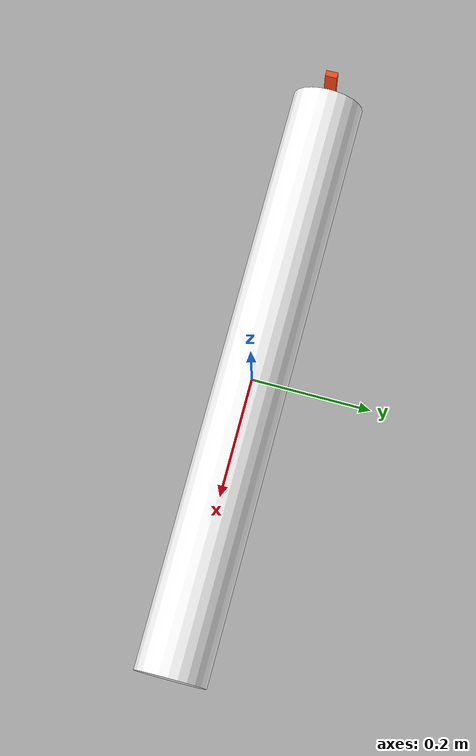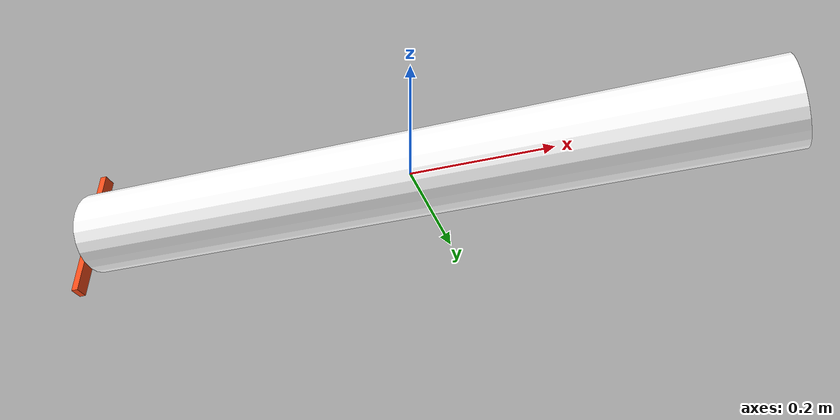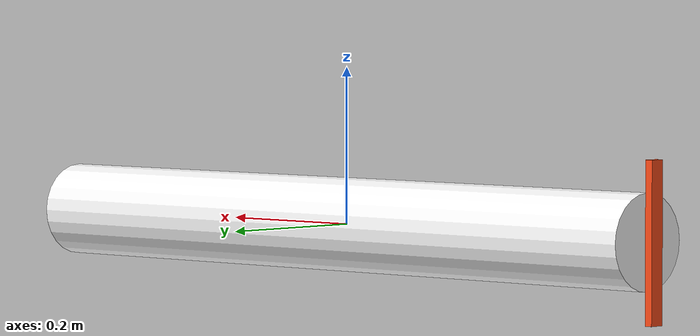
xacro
<?xml version="1.0"?>
<robot xmlns:xacro="http://www.ros.org/wiki/xacro">

    <material name="white">
        <color rgba="1 1 1 1" />
    </material>
    <material name="orange">
        <color rgba="1 0.3 0.1 1" />
    </material>
    <material name="blue">
        <color rgba="0.2 0.2 1 1" />
    </material>
    <material name="black">
        <color rgba="0 0 0 1" />
    </material>

    <!-- BASE LINK -->
    <link name="base_link"></link>

    <!-- CHASSIS LINK -->
    <joint name="chassis_joint" type="fixed">
        <parent link="base_link" />
        <child link="chassis" />
        <origin xyz="0 0 0" rpy="0 ${pi/2} 0" />
    </joint>

    <link name="chassis">
        <visual>
            <origin xyz="0 0 0" rpy="0 0 0" />
            <geometry>
                <cylinder radius="0.06" length="1.0" />
            </geometry>
            <material name="white" />
        </visual>
    </link>

    <!-- PROPELLER LINK -->
    <joint name="propeller_joint" type="continuous">
        <parent link="base_link" />
        <child link="propeller" />
        <origin xyz="-0.51 0 0" rpy="0 ${pi/2} 0" />
        <axis xyz="0 0 1" />
    </joint>

    <link name="propeller">
        <visual>
            <geometry>
                <box size="0.2 0.02 0.01" />
            </geometry>
            <material name="orange" />
        </visual>
        <collision>
            <geometry>
                <box size="0.2 0.02 0.01" />
            </geometry>
        </collision>
        <inertial>
            <mass value="0.1" />
            <inertia ixx="0.001" ixy="0" ixz="0"
                iyy="0.001" iyz="0"
                izz="0.001" />
        </inertial>
    </link>

</robot>
